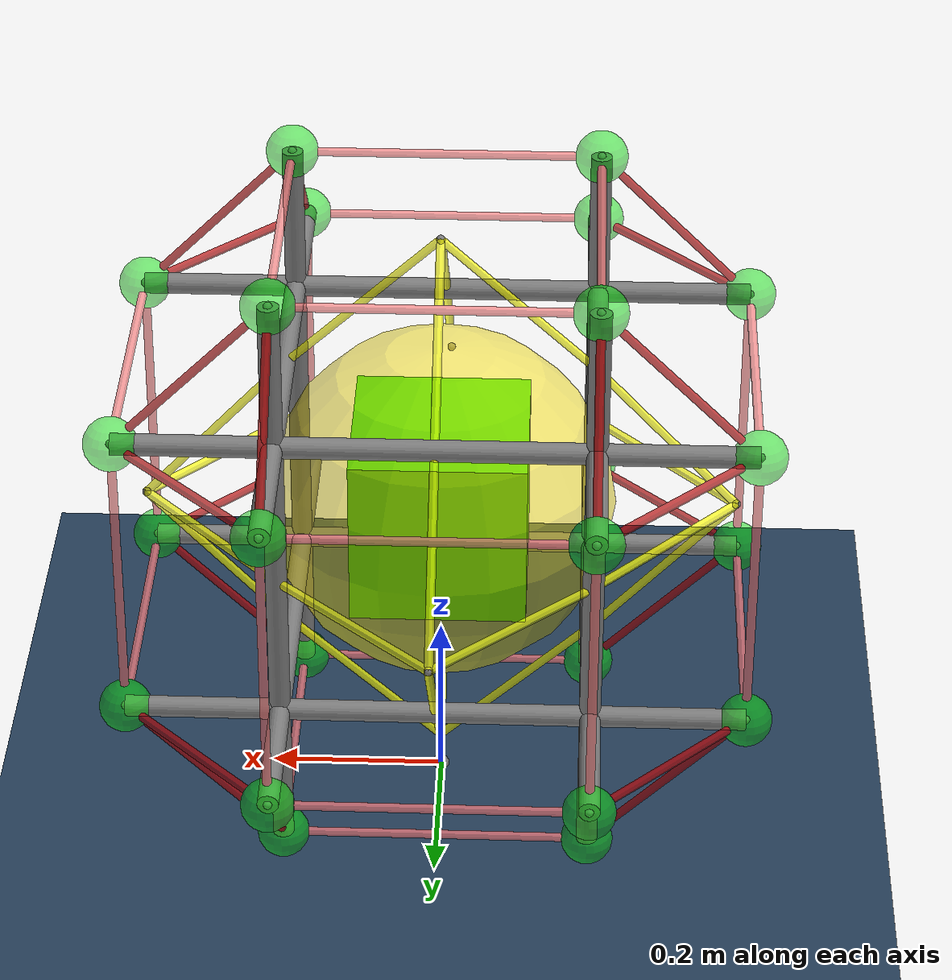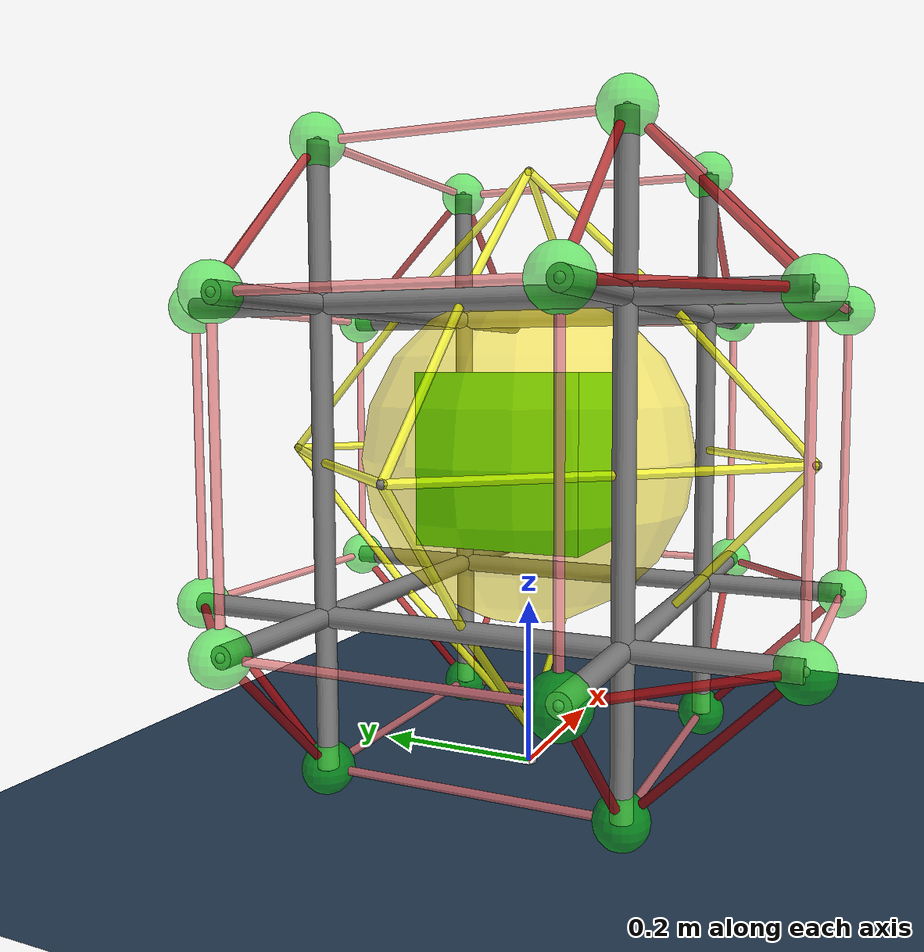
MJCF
<?xml version='1.0' encoding='utf-8'?>
<mujoco model="TT12_environment">
  <compiler autolimits="true" coordinate="local" angle="degree" inertiafromgeom="true" />
  <option timestep="1e-05" gravity="0 0 -10" integrator="Euler">
    <flag override="disable" energy="enable" />
  </option>
  <visual>
    <headlight ambient="0.59999999999999998 0.59999999999999998 0.59999999999999998" diffuse="0.29999999999999999 0.29999999999999999 0.29999999999999999" specular="0.10000000000000001 0.10000000000000001 0.10000000000000001" />
  </visual>
  <default>
    <default class="/">
      <joint type="hinge" damping="0" />
      <geom type="capsule" />
      <site type="sphere" size="0.01" />
      <tendon limited="true" range="0 10" width="0.0050000000000000001" rgba="1 0 0 1" damping="10" />
    </default>
    <default class="tt_model_0/">
      <tendon limited="true" range="0 10" width="0.0050000000000000001" rgba="1 0 0 1" damping="10" />
    </default>
    <default class="tt_model_0/rod0_1/" />
    <default class="tt_model_0/rod2_3/" />
    <default class="tt_model_0/rod4_5/" />
    <default class="tt_model_0/rod6_7/" />
    <default class="tt_model_0/rod8_9/" />
    <default class="tt_model_0/rod10_11/" />
    <default class="tt_model_0/rod12_13/" />
    <default class="tt_model_0/rod14_15/" />
    <default class="tt_model_0/rod16_17/" />
    <default class="tt_model_0/rod18_19/" />
    <default class="tt_model_0/rod20_21/" />
    <default class="tt_model_0/rod22_23/" />
    <default class="tt_model_0/middle_platform/" />
  </default>
  <asset>
    <texture name="skybox" type="skybox" builtin="gradient" rgb1="0.29999999999999999 0.5 0.69999999999999996" rgb2="0 0 0" width="512" height="3072" />
    <texture name="2d" type="2d" builtin="checker" rgb1="0.20000000000000001 0.29999999999999999 0.40000000000000002" rgb2="0.10000000000000001 0.20000000000000001 0.29999999999999999" width="300" height="300" />
    <material name="grid" class="/" texture="2d" texrepeat="5 5" reflectance="0.20000000000000001" />
  </asset>
  <worldbody>
    <geom name="floor" class="/" type="plane" condim="6" priority="1" size="0 0 0.125" material="grid" friction="0.5 0.0050000000000000001 0.0001" solref="-5773.1000000000004 -68.760000000000005" solimp="0.26900000000000002 0.070999999999999994 0.065000000000000002 0.5 2" pos="0 0 0" />
    <light name="light_-2" class="/" pos="-2 -1 3" dir="2 1 -2" />
    <light name="light_2" class="/" pos="2 -1 3" dir="-2 1 -2" />
    <site name="world_site" class="/" pos="0 0 0" />
    <site name="tt_model_0/middle_site_0_1" class="tt_model_0/" rgba="0 0 0 0" pos="0.17499999999999999 0.17499999999999999 0.38" />
    <body pos="0.17499999999999999 0.17499999999999999 0.38" name="tt_model_0/rod0_1/">
      <freejoint name="tt_model_0/rod0_1/" />
      <geom name="tt_model_0/rod0_1/geom0_1" class="tt_model_0/rod0_1/" type="cylinder" size="0.012" mass="0.022499999999999999" fromto="0 0 0.34999999999999998 0 0 -0.34999999999999998" />
      <site name="tt_model_0/rod0_1/node_0" class="tt_model_0/rod0_1/" pos="0 0 0.34999999999999998" />
      <site name="tt_model_0/rod0_1/node_1" class="tt_model_0/rod0_1/" pos="0 0 -0.34999999999999998" />
      <site name="tt_model_0/rod0_1/node_24" class="tt_model_0/rod0_1/" pos="0 0 0" />
      <geom name="tt_model_0/rod0_1/geom_edge_0" class="tt_model_0/rod0_1/" type="sphere" condim="6" size="0.029999999999999999" rgba="0 0.90000000000000002 0 0.5" mass="0.011299999999999999" pos="0 0 0.34999999999999998" />
      <geom name="tt_model_0/rod0_1/geom_edge_1" class="tt_model_0/rod0_1/" type="sphere" condim="6" size="0.029999999999999999" rgba="0 0.90000000000000002 0 0.5" mass="0.011299999999999999" pos="0 0 -0.34999999999999998" />
    </body>
    <site name="tt_model_0/middle_site_2_3" class="tt_model_0/" rgba="0 0 0 0" pos="-0.17499999999999999 0.17499999999999999 0.38" />
    <body pos="-0.17499999999999999 0.17499999999999999 0.38" name="tt_model_0/rod2_3/">
      <freejoint name="tt_model_0/rod2_3/" />
      <geom name="tt_model_0/rod2_3/geom2_3" class="tt_model_0/rod2_3/" type="cylinder" size="0.012" mass="0.022499999999999999" fromto="0 0 0.34999999999999998 0 0 -0.34999999999999998" />
      <site name="tt_model_0/rod2_3/node_2" class="tt_model_0/rod2_3/" pos="0 0 0.34999999999999998" />
      <site name="tt_model_0/rod2_3/node_3" class="tt_model_0/rod2_3/" pos="0 0 -0.34999999999999998" />
      <site name="tt_model_0/rod2_3/node_25" class="tt_model_0/rod2_3/" pos="0 0 0" />
      <geom name="tt_model_0/rod2_3/geom_edge_2" class="tt_model_0/rod2_3/" type="sphere" condim="6" size="0.029999999999999999" rgba="0 0.90000000000000002 0 0.5" mass="0.011299999999999999" pos="0 0 0.34999999999999998" />
      <geom name="tt_model_0/rod2_3/geom_edge_3" class="tt_model_0/rod2_3/" type="sphere" condim="6" size="0.029999999999999999" rgba="0 0.90000000000000002 0 0.5" mass="0.011299999999999999" pos="0 0 -0.34999999999999998" />
    </body>
    <site name="tt_model_0/middle_site_4_5" class="tt_model_0/" rgba="0 0 0 0" pos="-0.17499999999999999 -0.17499999999999999 0.38" />
    <body pos="-0.17499999999999999 -0.17499999999999999 0.38" name="tt_model_0/rod4_5/">
      <freejoint name="tt_model_0/rod4_5/" />
      <geom name="tt_model_0/rod4_5/geom4_5" class="tt_model_0/rod4_5/" type="cylinder" size="0.012" mass="0.022499999999999999" fromto="0 0 0.34999999999999998 0 0 -0.34999999999999998" />
      <site name="tt_model_0/rod4_5/node_4" class="tt_model_0/rod4_5/" pos="0 0 0.34999999999999998" />
      <site name="tt_model_0/rod4_5/node_5" class="tt_model_0/rod4_5/" pos="0 0 -0.34999999999999998" />
      <site name="tt_model_0/rod4_5/node_26" class="tt_model_0/rod4_5/" pos="0 0 0" />
      <geom name="tt_model_0/rod4_5/geom_edge_4" class="tt_model_0/rod4_5/" type="sphere" condim="6" size="0.029999999999999999" rgba="0 0.90000000000000002 0 0.5" mass="0.011299999999999999" pos="0 0 0.34999999999999998" />
      <geom name="tt_model_0/rod4_5/geom_edge_5" class="tt_model_0/rod4_5/" type="sphere" condim="6" size="0.029999999999999999" rgba="0 0.90000000000000002 0 0.5" mass="0.011299999999999999" pos="0 0 -0.34999999999999998" />
    </body>
    <site name="tt_model_0/middle_site_6_7" class="tt_model_0/" rgba="0 0 0 0" pos="0.17499999999999999 -0.17499999999999999 0.38" />
    <body pos="0.17499999999999999 -0.17499999999999999 0.38" name="tt_model_0/rod6_7/">
      <freejoint name="tt_model_0/rod6_7/" />
      <geom name="tt_model_0/rod6_7/geom6_7" class="tt_model_0/rod6_7/" type="cylinder" size="0.012" mass="0.022499999999999999" fromto="0 0 0.34999999999999998 0 0 -0.34999999999999998" />
      <site name="tt_model_0/rod6_7/node_6" class="tt_model_0/rod6_7/" pos="0 0 0.34999999999999998" />
      <site name="tt_model_0/rod6_7/node_7" class="tt_model_0/rod6_7/" pos="0 0 -0.34999999999999998" />
      <site name="tt_model_0/rod6_7/node_27" class="tt_model_0/rod6_7/" pos="0 0 0" />
      <geom name="tt_model_0/rod6_7/geom_edge_6" class="tt_model_0/rod6_7/" type="sphere" condim="6" size="0.029999999999999999" rgba="0 0.90000000000000002 0 0.5" mass="0.011299999999999999" pos="0 0 0.34999999999999998" />
      <geom name="tt_model_0/rod6_7/geom_edge_7" class="tt_model_0/rod6_7/" type="sphere" condim="6" size="0.029999999999999999" rgba="0 0.90000000000000002 0 0.5" mass="0.011299999999999999" pos="0 0 -0.34999999999999998" />
    </body>
    <site name="tt_model_0/middle_site_8_9" class="tt_model_0/" rgba="0 0 0 0" pos="0.17499999999999999 0 0.55499999999999994" />
    <body pos="0.17499999999999999 0 0.55499999999999994" name="tt_model_0/rod8_9/">
      <freejoint name="tt_model_0/rod8_9/" />
      <geom name="tt_model_0/rod8_9/geom8_9" class="tt_model_0/rod8_9/" type="cylinder" size="0.012" mass="0.022499999999999999" fromto="0 0.34999999999999998 0 0 -0.34999999999999998 0" />
      <site name="tt_model_0/rod8_9/node_8" class="tt_model_0/rod8_9/" pos="0 0.34999999999999998 0" />
      <site name="tt_model_0/rod8_9/node_9" class="tt_model_0/rod8_9/" pos="0 -0.34999999999999998 0" />
      <site name="tt_model_0/rod8_9/node_28" class="tt_model_0/rod8_9/" pos="0 0 0" />
      <geom name="tt_model_0/rod8_9/geom_edge_8" class="tt_model_0/rod8_9/" type="sphere" condim="6" size="0.029999999999999999" rgba="0 0.90000000000000002 0 0.5" mass="0.011299999999999999" pos="0 0.34999999999999998 0" />
      <geom name="tt_model_0/rod8_9/geom_edge_9" class="tt_model_0/rod8_9/" type="sphere" condim="6" size="0.029999999999999999" rgba="0 0.90000000000000002 0 0.5" mass="0.011299999999999999" pos="0 -0.34999999999999998 0" />
    </body>
    <site name="tt_model_0/middle_site_10_11" class="tt_model_0/" rgba="0 0 0 0" pos="0.17499999999999999 0 0.20500000000000002" />
    <body pos="0.17499999999999999 0 0.20500000000000002" name="tt_model_0/rod10_11/">
      <freejoint name="tt_model_0/rod10_11/" />
      <geom name="tt_model_0/rod10_11/geom10_11" class="tt_model_0/rod10_11/" type="cylinder" size="0.012" mass="0.022499999999999999" fromto="0 0.34999999999999998 0 0 -0.34999999999999998 0" />
      <site name="tt_model_0/rod10_11/node_10" class="tt_model_0/rod10_11/" pos="0 0.34999999999999998 0" />
      <site name="tt_model_0/rod10_11/node_11" class="tt_model_0/rod10_11/" pos="0 -0.34999999999999998 0" />
      <site name="tt_model_0/rod10_11/node_29" class="tt_model_0/rod10_11/" pos="0 0 0" />
      <geom name="tt_model_0/rod10_11/geom_edge_10" class="tt_model_0/rod10_11/" type="sphere" condim="6" size="0.029999999999999999" rgba="0 0.90000000000000002 0 0.5" mass="0.011299999999999999" pos="0 0.34999999999999998 0" />
      <geom name="tt_model_0/rod10_11/geom_edge_11" class="tt_model_0/rod10_11/" type="sphere" condim="6" size="0.029999999999999999" rgba="0 0.90000000000000002 0 0.5" mass="0.011299999999999999" pos="0 -0.34999999999999998 0" />
    </body>
    <site name="tt_model_0/middle_site_12_13" class="tt_model_0/" rgba="0 0 0 0" pos="-0.17499999999999999 0 0.20500000000000002" />
    <body pos="-0.17499999999999999 0 0.20500000000000002" name="tt_model_0/rod12_13/">
      <freejoint name="tt_model_0/rod12_13/" />
      <geom name="tt_model_0/rod12_13/geom12_13" class="tt_model_0/rod12_13/" type="cylinder" size="0.012" mass="0.022499999999999999" fromto="0 0.34999999999999998 0 0 -0.34999999999999998 0" />
      <site name="tt_model_0/rod12_13/node_12" class="tt_model_0/rod12_13/" pos="0 0.34999999999999998 0" />
      <site name="tt_model_0/rod12_13/node_13" class="tt_model_0/rod12_13/" pos="0 -0.34999999999999998 0" />
      <site name="tt_model_0/rod12_13/node_30" class="tt_model_0/rod12_13/" pos="0 0 0" />
      <geom name="tt_model_0/rod12_13/geom_edge_12" class="tt_model_0/rod12_13/" type="sphere" condim="6" size="0.029999999999999999" rgba="0 0.90000000000000002 0 0.5" mass="0.011299999999999999" pos="0 0.34999999999999998 0" />
      <geom name="tt_model_0/rod12_13/geom_edge_13" class="tt_model_0/rod12_13/" type="sphere" condim="6" size="0.029999999999999999" rgba="0 0.90000000000000002 0 0.5" mass="0.011299999999999999" pos="0 -0.34999999999999998 0" />
    </body>
    <site name="tt_model_0/middle_site_14_15" class="tt_model_0/" rgba="0 0 0 0" pos="-0.17499999999999999 0 0.55499999999999994" />
    <body pos="-0.17499999999999999 0 0.55499999999999994" name="tt_model_0/rod14_15/">
      <freejoint name="tt_model_0/rod14_15/" />
      <geom name="tt_model_0/rod14_15/geom14_15" class="tt_model_0/rod14_15/" type="cylinder" size="0.012" mass="0.022499999999999999" fromto="0 0.34999999999999998 0 0 -0.34999999999999998 0" />
      <site name="tt_model_0/rod14_15/node_14" class="tt_model_0/rod14_15/" pos="0 0.34999999999999998 0" />
      <site name="tt_model_0/rod14_15/node_15" class="tt_model_0/rod14_15/" pos="0 -0.34999999999999998 0" />
      <site name="tt_model_0/rod14_15/node_31" class="tt_model_0/rod14_15/" pos="0 0 0" />
      <geom name="tt_model_0/rod14_15/geom_edge_14" class="tt_model_0/rod14_15/" type="sphere" condim="6" size="0.029999999999999999" rgba="0 0.90000000000000002 0 0.5" mass="0.011299999999999999" pos="0 0.34999999999999998 0" />
      <geom name="tt_model_0/rod14_15/geom_edge_15" class="tt_model_0/rod14_15/" type="sphere" condim="6" size="0.029999999999999999" rgba="0 0.90000000000000002 0 0.5" mass="0.011299999999999999" pos="0 -0.34999999999999998 0" />
    </body>
    <site name="tt_model_0/middle_site_16_17" class="tt_model_0/" rgba="0 0 0 0" pos="0 0.17499999999999999 0.55499999999999994" />
    <body pos="0 0.17499999999999999 0.55499999999999994" name="tt_model_0/rod16_17/">
      <freejoint name="tt_model_0/rod16_17/" />
      <geom name="tt_model_0/rod16_17/geom16_17" class="tt_model_0/rod16_17/" type="cylinder" size="0.012" mass="0.022499999999999999" fromto="0.34999999999999998 0 0 -0.34999999999999998 0 0" />
      <site name="tt_model_0/rod16_17/node_16" class="tt_model_0/rod16_17/" pos="0.34999999999999998 0 0" />
      <site name="tt_model_0/rod16_17/node_17" class="tt_model_0/rod16_17/" pos="-0.34999999999999998 0 0" />
      <site name="tt_model_0/rod16_17/node_32" class="tt_model_0/rod16_17/" pos="0 0 0" />
      <geom name="tt_model_0/rod16_17/geom_edge_16" class="tt_model_0/rod16_17/" type="sphere" condim="6" size="0.029999999999999999" rgba="0 0.90000000000000002 0 0.5" mass="0.011299999999999999" pos="0.34999999999999998 0 0" />
      <geom name="tt_model_0/rod16_17/geom_edge_17" class="tt_model_0/rod16_17/" type="sphere" condim="6" size="0.029999999999999999" rgba="0 0.90000000000000002 0 0.5" mass="0.011299999999999999" pos="-0.34999999999999998 0 0" />
    </body>
    <site name="tt_model_0/middle_site_18_19" class="tt_model_0/" rgba="0 0 0 0" pos="0 -0.17499999999999999 0.55499999999999994" />
    <body pos="0 -0.17499999999999999 0.55499999999999994" name="tt_model_0/rod18_19/">
      <freejoint name="tt_model_0/rod18_19/" />
      <geom name="tt_model_0/rod18_19/geom18_19" class="tt_model_0/rod18_19/" type="cylinder" size="0.012" mass="0.022499999999999999" fromto="0.34999999999999998 0 0 -0.34999999999999998 0 0" />
      <site name="tt_model_0/rod18_19/node_18" class="tt_model_0/rod18_19/" pos="0.34999999999999998 0 0" />
      <site name="tt_model_0/rod18_19/node_19" class="tt_model_0/rod18_19/" pos="-0.34999999999999998 0 0" />
      <site name="tt_model_0/rod18_19/node_33" class="tt_model_0/rod18_19/" pos="0 0 0" />
      <geom name="tt_model_0/rod18_19/geom_edge_18" class="tt_model_0/rod18_19/" type="sphere" condim="6" size="0.029999999999999999" rgba="0 0.90000000000000002 0 0.5" mass="0.011299999999999999" pos="0.34999999999999998 0 0" />
      <geom name="tt_model_0/rod18_19/geom_edge_19" class="tt_model_0/rod18_19/" type="sphere" condim="6" size="0.029999999999999999" rgba="0 0.90000000000000002 0 0.5" mass="0.011299999999999999" pos="-0.34999999999999998 0 0" />
    </body>
    <site name="tt_model_0/middle_site_20_21" class="tt_model_0/" rgba="0 0 0 0" pos="0 -0.17499999999999999 0.20500000000000002" />
    <body pos="0 -0.17499999999999999 0.20500000000000002" name="tt_model_0/rod20_21/">
      <freejoint name="tt_model_0/rod20_21/" />
      <geom name="tt_model_0/rod20_21/geom20_21" class="tt_model_0/rod20_21/" type="cylinder" size="0.012" mass="0.022499999999999999" fromto="0.34999999999999998 0 0 -0.34999999999999998 0 0" />
      <site name="tt_model_0/rod20_21/node_20" class="tt_model_0/rod20_21/" pos="0.34999999999999998 0 0" />
      <site name="tt_model_0/rod20_21/node_21" class="tt_model_0/rod20_21/" pos="-0.34999999999999998 0 0" />
      <site name="tt_model_0/rod20_21/node_34" class="tt_model_0/rod20_21/" pos="0 0 0" />
      <geom name="tt_model_0/rod20_21/geom_edge_20" class="tt_model_0/rod20_21/" type="sphere" condim="6" size="0.029999999999999999" rgba="0 0.90000000000000002 0 0.5" mass="0.011299999999999999" pos="0.34999999999999998 0 0" />
      <geom name="tt_model_0/rod20_21/geom_edge_21" class="tt_model_0/rod20_21/" type="sphere" condim="6" size="0.029999999999999999" rgba="0 0.90000000000000002 0 0.5" mass="0.011299999999999999" pos="-0.34999999999999998 0 0" />
    </body>
    <site name="tt_model_0/middle_site_22_23" class="tt_model_0/" rgba="0 0 0 0" pos="0 0.17499999999999999 0.20500000000000002" />
    <body pos="0 0.17499999999999999 0.20500000000000002" name="tt_model_0/rod22_23/">
      <freejoint name="tt_model_0/rod22_23/" />
      <geom name="tt_model_0/rod22_23/geom22_23" class="tt_model_0/rod22_23/" type="cylinder" size="0.012" mass="0.022499999999999999" fromto="0.34999999999999998 0 0 -0.34999999999999998 0 0" />
      <site name="tt_model_0/rod22_23/node_22" class="tt_model_0/rod22_23/" pos="0.34999999999999998 0 0" />
      <site name="tt_model_0/rod22_23/node_23" class="tt_model_0/rod22_23/" pos="-0.34999999999999998 0 0" />
      <site name="tt_model_0/rod22_23/node_35" class="tt_model_0/rod22_23/" pos="0 0 0" />
      <geom name="tt_model_0/rod22_23/geom_edge_22" class="tt_model_0/rod22_23/" type="sphere" condim="6" size="0.029999999999999999" rgba="0 0.90000000000000002 0 0.5" mass="0.011299999999999999" pos="0.34999999999999998 0 0" />
      <geom name="tt_model_0/rod22_23/geom_edge_23" class="tt_model_0/rod22_23/" type="sphere" condim="6" size="0.029999999999999999" rgba="0 0.90000000000000002 0 0.5" mass="0.011299999999999999" pos="-0.34999999999999998 0 0" />
    </body>
    <site name="tt_model_0/middle_element_site" class="tt_model_0/" rgba="0 0 0 0" pos="0 0 0.38" />
    <body pos="0 0 0.38" name="tt_model_0/middle_platform/">
      <freejoint name="tt_model_0/middle_platform/" />
      <inertial pos="0 0 0" mass="0.69999999999999996" diaginertia="0.02 0.02 0.02" />
      <site name="tt_model_0/middle_platform/node_41" class="tt_model_0/middle_platform/" pos="0 0 0.33700000000000008" />
      <site name="tt_model_0/middle_platform/node_38" class="tt_model_0/middle_platform/" pos="-0.33700000000000002 0 0" />
      <site name="tt_model_0/middle_platform/node_40" class="tt_model_0/middle_platform/" pos="0 -0.33700000000000002 0" />
      <site name="tt_model_0/middle_platform/node_39" class="tt_model_0/middle_platform/" pos="0 0.33700000000000002 0" />
      <site name="tt_model_0/middle_platform/node_37" class="tt_model_0/middle_platform/" pos="0.33700000000000002 0 0" />
      <site name="tt_model_0/middle_platform/node_42" class="tt_model_0/middle_platform/" pos="0 0 -0.33700000000000002" />
      <site name="tt_model_0/middle_platform/outside_site" class="tt_model_0/middle_platform/" rgba="1 0.90000000000000002 0 0.5" size="0.20000000000000001" pos="0 0 0" />
      <body name="tt_model_0/middle_platform/inside_ball" pos="0 0 0">
        <inertial pos="0 0 0" mass="6.5999999999999996" diaginertia="0.12 0.12 0.12" />
        <joint name="tt_model_0/middle_platform/x_control" class="tt_model_0/middle_platform/" type="hinge" axis="1 0 0" />
        <joint name="tt_model_0/middle_platform/y_control" class="tt_model_0/middle_platform/" type="hinge" axis="0 1 0" />
        <joint name="tt_model_0/middle_platform/z_control" class="tt_model_0/middle_platform/" type="hinge" axis="0 0 1" />
        <site name="tt_model_0/middle_platform/inside_site" class="tt_model_0/middle_platform/" type="box" rgba="0 0.90000000000000002 0 1" size="0.10000000000000001 0.10000000000000001 0.10000000000000001" pos="0 0 0" />
      </body>
    </body>
  </worldbody>
  <contact>
    <exclude name="tt_model_0/exclude_rod0_1_rod2_3" body1="tt_model_0/rod0_1/" body2="tt_model_0/rod2_3/" />
    <exclude name="tt_model_0/exclude_rod0_1_rod4_5" body1="tt_model_0/rod0_1/" body2="tt_model_0/rod4_5/" />
    <exclude name="tt_model_0/exclude_rod0_1_rod6_7" body1="tt_model_0/rod0_1/" body2="tt_model_0/rod6_7/" />
    <exclude name="tt_model_0/exclude_rod0_1_rod8_9" body1="tt_model_0/rod0_1/" body2="tt_model_0/rod8_9/" />
    <exclude name="tt_model_0/exclude_rod0_1_rod10_11" body1="tt_model_0/rod0_1/" body2="tt_model_0/rod10_11/" />
    <exclude name="tt_model_0/exclude_rod0_1_rod12_13" body1="tt_model_0/rod0_1/" body2="tt_model_0/rod12_13/" />
    <exclude name="tt_model_0/exclude_rod0_1_rod14_15" body1="tt_model_0/rod0_1/" body2="tt_model_0/rod14_15/" />
    <exclude name="tt_model_0/exclude_rod0_1_rod16_17" body1="tt_model_0/rod0_1/" body2="tt_model_0/rod16_17/" />
    <exclude name="tt_model_0/exclude_rod0_1_rod18_19" body1="tt_model_0/rod0_1/" body2="tt_model_0/rod18_19/" />
    <exclude name="tt_model_0/exclude_rod0_1_rod20_21" body1="tt_model_0/rod0_1/" body2="tt_model_0/rod20_21/" />
    <exclude name="tt_model_0/exclude_rod0_1_rod22_23" body1="tt_model_0/rod0_1/" body2="tt_model_0/rod22_23/" />
    <exclude name="tt_model_0/exclude_rod2_3_rod4_5" body1="tt_model_0/rod2_3/" body2="tt_model_0/rod4_5/" />
    <exclude name="tt_model_0/exclude_rod2_3_rod6_7" body1="tt_model_0/rod2_3/" body2="tt_model_0/rod6_7/" />
    <exclude name="tt_model_0/exclude_rod2_3_rod8_9" body1="tt_model_0/rod2_3/" body2="tt_model_0/rod8_9/" />
    <exclude name="tt_model_0/exclude_rod2_3_rod10_11" body1="tt_model_0/rod2_3/" body2="tt_model_0/rod10_11/" />
    <exclude name="tt_model_0/exclude_rod2_3_rod12_13" body1="tt_model_0/rod2_3/" body2="tt_model_0/rod12_13/" />
    <exclude name="tt_model_0/exclude_rod2_3_rod14_15" body1="tt_model_0/rod2_3/" body2="tt_model_0/rod14_15/" />
    <exclude name="tt_model_0/exclude_rod2_3_rod16_17" body1="tt_model_0/rod2_3/" body2="tt_model_0/rod16_17/" />
    <exclude name="tt_model_0/exclude_rod2_3_rod18_19" body1="tt_model_0/rod2_3/" body2="tt_model_0/rod18_19/" />
    <exclude name="tt_model_0/exclude_rod2_3_rod20_21" body1="tt_model_0/rod2_3/" body2="tt_model_0/rod20_21/" />
    <exclude name="tt_model_0/exclude_rod2_3_rod22_23" body1="tt_model_0/rod2_3/" body2="tt_model_0/rod22_23/" />
    <exclude name="tt_model_0/exclude_rod4_5_rod6_7" body1="tt_model_0/rod4_5/" body2="tt_model_0/rod6_7/" />
    <exclude name="tt_model_0/exclude_rod4_5_rod8_9" body1="tt_model_0/rod4_5/" body2="tt_model_0/rod8_9/" />
    <exclude name="tt_model_0/exclude_rod4_5_rod10_11" body1="tt_model_0/rod4_5/" body2="tt_model_0/rod10_11/" />
    <exclude name="tt_model_0/exclude_rod4_5_rod12_13" body1="tt_model_0/rod4_5/" body2="tt_model_0/rod12_13/" />
    <exclude name="tt_model_0/exclude_rod4_5_rod14_15" body1="tt_model_0/rod4_5/" body2="tt_model_0/rod14_15/" />
    <exclude name="tt_model_0/exclude_rod4_5_rod16_17" body1="tt_model_0/rod4_5/" body2="tt_model_0/rod16_17/" />
    <exclude name="tt_model_0/exclude_rod4_5_rod18_19" body1="tt_model_0/rod4_5/" body2="tt_model_0/rod18_19/" />
    <exclude name="tt_model_0/exclude_rod4_5_rod20_21" body1="tt_model_0/rod4_5/" body2="tt_model_0/rod20_21/" />
    <exclude name="tt_model_0/exclude_rod4_5_rod22_23" body1="tt_model_0/rod4_5/" body2="tt_model_0/rod22_23/" />
    <exclude name="tt_model_0/exclude_rod6_7_rod8_9" body1="tt_model_0/rod6_7/" body2="tt_model_0/rod8_9/" />
    <exclude name="tt_model_0/exclude_rod6_7_rod10_11" body1="tt_model_0/rod6_7/" body2="tt_model_0/rod10_11/" />
    <exclude name="tt_model_0/exclude_rod6_7_rod12_13" body1="tt_model_0/rod6_7/" body2="tt_model_0/rod12_13/" />
    <exclude name="tt_model_0/exclude_rod6_7_rod14_15" body1="tt_model_0/rod6_7/" body2="tt_model_0/rod14_15/" />
    <exclude name="tt_model_0/exclude_rod6_7_rod16_17" body1="tt_model_0/rod6_7/" body2="tt_model_0/rod16_17/" />
    <exclude name="tt_model_0/exclude_rod6_7_rod18_19" body1="tt_model_0/rod6_7/" body2="tt_model_0/rod18_19/" />
    <exclude name="tt_model_0/exclude_rod6_7_rod20_21" body1="tt_model_0/rod6_7/" body2="tt_model_0/rod20_21/" />
    <exclude name="tt_model_0/exclude_rod6_7_rod22_23" body1="tt_model_0/rod6_7/" body2="tt_model_0/rod22_23/" />
    <exclude name="tt_model_0/exclude_rod8_9_rod10_11" body1="tt_model_0/rod8_9/" body2="tt_model_0/rod10_11/" />
    <exclude name="tt_model_0/exclude_rod8_9_rod12_13" body1="tt_model_0/rod8_9/" body2="tt_model_0/rod12_13/" />
    <exclude name="tt_model_0/exclude_rod8_9_rod14_15" body1="tt_model_0/rod8_9/" body2="tt_model_0/rod14_15/" />
    <exclude name="tt_model_0/exclude_rod8_9_rod16_17" body1="tt_model_0/rod8_9/" body2="tt_model_0/rod16_17/" />
    <exclude name="tt_model_0/exclude_rod8_9_rod18_19" body1="tt_model_0/rod8_9/" body2="tt_model_0/rod18_19/" />
    <exclude name="tt_model_0/exclude_rod8_9_rod20_21" body1="tt_model_0/rod8_9/" body2="tt_model_0/rod20_21/" />
    <exclude name="tt_model_0/exclude_rod8_9_rod22_23" body1="tt_model_0/rod8_9/" body2="tt_model_0/rod22_23/" />
    <exclude name="tt_model_0/exclude_rod10_11_rod12_13" body1="tt_model_0/rod10_11/" body2="tt_model_0/rod12_13/" />
    <exclude name="tt_model_0/exclude_rod10_11_rod14_15" body1="tt_model_0/rod10_11/" body2="tt_model_0/rod14_15/" />
    <exclude name="tt_model_0/exclude_rod10_11_rod16_17" body1="tt_model_0/rod10_11/" body2="tt_model_0/rod16_17/" />
    <exclude name="tt_model_0/exclude_rod10_11_rod18_19" body1="tt_model_0/rod10_11/" body2="tt_model_0/rod18_19/" />
    <exclude name="tt_model_0/exclude_rod10_11_rod20_21" body1="tt_model_0/rod10_11/" body2="tt_model_0/rod20_21/" />
    <exclude name="tt_model_0/exclude_rod10_11_rod22_23" body1="tt_model_0/rod10_11/" body2="tt_model_0/rod22_23/" />
    <exclude name="tt_model_0/exclude_rod12_13_rod14_15" body1="tt_model_0/rod12_13/" body2="tt_model_0/rod14_15/" />
    <exclude name="tt_model_0/exclude_rod12_13_rod16_17" body1="tt_model_0/rod12_13/" body2="tt_model_0/rod16_17/" />
    <exclude name="tt_model_0/exclude_rod12_13_rod18_19" body1="tt_model_0/rod12_13/" body2="tt_model_0/rod18_19/" />
    <exclude name="tt_model_0/exclude_rod12_13_rod20_21" body1="tt_model_0/rod12_13/" body2="tt_model_0/rod20_21/" />
    <exclude name="tt_model_0/exclude_rod12_13_rod22_23" body1="tt_model_0/rod12_13/" body2="tt_model_0/rod22_23/" />
    <exclude name="tt_model_0/exclude_rod14_15_rod16_17" body1="tt_model_0/rod14_15/" body2="tt_model_0/rod16_17/" />
    <exclude name="tt_model_0/exclude_rod14_15_rod18_19" body1="tt_model_0/rod14_15/" body2="tt_model_0/rod18_19/" />
    <exclude name="tt_model_0/exclude_rod14_15_rod20_21" body1="tt_model_0/rod14_15/" body2="tt_model_0/rod20_21/" />
    <exclude name="tt_model_0/exclude_rod14_15_rod22_23" body1="tt_model_0/rod14_15/" body2="tt_model_0/rod22_23/" />
    <exclude name="tt_model_0/exclude_rod16_17_rod18_19" body1="tt_model_0/rod16_17/" body2="tt_model_0/rod18_19/" />
    <exclude name="tt_model_0/exclude_rod16_17_rod20_21" body1="tt_model_0/rod16_17/" body2="tt_model_0/rod20_21/" />
    <exclude name="tt_model_0/exclude_rod16_17_rod22_23" body1="tt_model_0/rod16_17/" body2="tt_model_0/rod22_23/" />
    <exclude name="tt_model_0/exclude_rod18_19_rod20_21" body1="tt_model_0/rod18_19/" body2="tt_model_0/rod20_21/" />
    <exclude name="tt_model_0/exclude_rod18_19_rod22_23" body1="tt_model_0/rod18_19/" body2="tt_model_0/rod22_23/" />
    <exclude name="tt_model_0/exclude_rod20_21_rod22_23" body1="tt_model_0/rod20_21/" body2="tt_model_0/rod22_23/" />
  </contact>
  <tendon>
    <spatial name="tt_model_0/td0_2" class="tt_model_0/" rgba="1 0.5 0.5 0.69999999999999996" springlength="0.22029831387808038" stiffness="771">
      <site site="tt_model_0/rod0_1/node_0" />
      <site site="tt_model_0/rod2_3/node_2" />
    </spatial>
    <spatial name="tt_model_0/td2_4" class="tt_model_0/" rgba="1 0.5 0.5 0.69999999999999996" springlength="0.22029831387808038" stiffness="771">
      <site site="tt_model_0/rod2_3/node_2" />
      <site site="tt_model_0/rod4_5/node_4" />
    </spatial>
    <spatial name="tt_model_0/td4_6" class="tt_model_0/" rgba="1 0.5 0.5 0.69999999999999996" springlength="0.22029831387808038" stiffness="771">
      <site site="tt_model_0/rod4_5/node_4" />
      <site site="tt_model_0/rod6_7/node_6" />
    </spatial>
    <spatial name="tt_model_0/td6_0" class="tt_model_0/" rgba="1 0.5 0.5 0.69999999999999996" springlength="0.22029831387808038" stiffness="771">
      <site site="tt_model_0/rod6_7/node_6" />
      <site site="tt_model_0/rod0_1/node_0" />
    </spatial>
    <spatial name="tt_model_0/td1_3" class="tt_model_0/" rgba="1 0.5 0.5 0.69999999999999996" springlength="0.22029831387808038" stiffness="771">
      <site site="tt_model_0/rod0_1/node_1" />
      <site site="tt_model_0/rod2_3/node_3" />
    </spatial>
    <spatial name="tt_model_0/td3_5" class="tt_model_0/" rgba="1 0.5 0.5 0.69999999999999996" springlength="0.22029831387808038" stiffness="771">
      <site site="tt_model_0/rod2_3/node_3" />
      <site site="tt_model_0/rod4_5/node_5" />
    </spatial>
    <spatial name="tt_model_0/td5_7" class="tt_model_0/" rgba="1 0.5 0.5 0.69999999999999996" springlength="0.22029831387808038" stiffness="771">
      <site site="tt_model_0/rod4_5/node_5" />
      <site site="tt_model_0/rod6_7/node_7" />
    </spatial>
    <spatial name="tt_model_0/td7_1" class="tt_model_0/" rgba="1 0.5 0.5 0.69999999999999996" springlength="0.22029831387808038" stiffness="771">
      <site site="tt_model_0/rod6_7/node_7" />
      <site site="tt_model_0/rod0_1/node_1" />
    </spatial>
    <spatial name="tt_model_0/td8_10" class="tt_model_0/" rgba="1 0.5 0.5 0.69999999999999996" springlength="0.22029831387808038" stiffness="771">
      <site site="tt_model_0/rod8_9/node_8" />
      <site site="tt_model_0/rod10_11/node_10" />
    </spatial>
    <spatial name="tt_model_0/td10_12" class="tt_model_0/" rgba="1 0.5 0.5 0.69999999999999996" springlength="0.22029831387808038" stiffness="771">
      <site site="tt_model_0/rod10_11/node_10" />
      <site site="tt_model_0/rod12_13/node_12" />
    </spatial>
    <spatial name="tt_model_0/td12_14" class="tt_model_0/" rgba="1 0.5 0.5 0.69999999999999996" springlength="0.22029831387808038" stiffness="771">
      <site site="tt_model_0/rod12_13/node_12" />
      <site site="tt_model_0/rod14_15/node_14" />
    </spatial>
    <spatial name="tt_model_0/td14_8" class="tt_model_0/" rgba="1 0.5 0.5 0.69999999999999996" springlength="0.22029831387808038" stiffness="771">
      <site site="tt_model_0/rod14_15/node_14" />
      <site site="tt_model_0/rod8_9/node_8" />
    </spatial>
    <spatial name="tt_model_0/td9_11" class="tt_model_0/" rgba="1 0.5 0.5 0.69999999999999996" springlength="0.22029831387808038" stiffness="771">
      <site site="tt_model_0/rod8_9/node_9" />
      <site site="tt_model_0/rod10_11/node_11" />
    </spatial>
    <spatial name="tt_model_0/td11_13" class="tt_model_0/" rgba="1 0.5 0.5 0.69999999999999996" springlength="0.22029831387808038" stiffness="771">
      <site site="tt_model_0/rod10_11/node_11" />
      <site site="tt_model_0/rod12_13/node_13" />
    </spatial>
    <spatial name="tt_model_0/td13_15" class="tt_model_0/" rgba="1 0.5 0.5 0.69999999999999996" springlength="0.22029831387808038" stiffness="771">
      <site site="tt_model_0/rod12_13/node_13" />
      <site site="tt_model_0/rod14_15/node_15" />
    </spatial>
    <spatial name="tt_model_0/td15_9" class="tt_model_0/" rgba="1 0.5 0.5 0.69999999999999996" springlength="0.22029831387808038" stiffness="771">
      <site site="tt_model_0/rod14_15/node_15" />
      <site site="tt_model_0/rod8_9/node_9" />
    </spatial>
    <spatial name="tt_model_0/td16_18" class="tt_model_0/" rgba="1 0.5 0.5 0.69999999999999996" springlength="0.22029831387808038" stiffness="771">
      <site site="tt_model_0/rod16_17/node_16" />
      <site site="tt_model_0/rod18_19/node_18" />
    </spatial>
    <spatial name="tt_model_0/td18_20" class="tt_model_0/" rgba="1 0.5 0.5 0.69999999999999996" springlength="0.22029831387808038" stiffness="771">
      <site site="tt_model_0/rod18_19/node_18" />
      <site site="tt_model_0/rod20_21/node_20" />
    </spatial>
    <spatial name="tt_model_0/td20_22" class="tt_model_0/" rgba="1 0.5 0.5 0.69999999999999996" springlength="0.22029831387808038" stiffness="771">
      <site site="tt_model_0/rod20_21/node_20" />
      <site site="tt_model_0/rod22_23/node_22" />
    </spatial>
    <spatial name="tt_model_0/td22_16" class="tt_model_0/" rgba="1 0.5 0.5 0.69999999999999996" springlength="0.22029831387808038" stiffness="771">
      <site site="tt_model_0/rod22_23/node_22" />
      <site site="tt_model_0/rod16_17/node_16" />
    </spatial>
    <spatial name="tt_model_0/td17_19" class="tt_model_0/" rgba="1 0.5 0.5 0.69999999999999996" springlength="0.22029831387808038" stiffness="771">
      <site site="tt_model_0/rod16_17/node_17" />
      <site site="tt_model_0/rod18_19/node_19" />
    </spatial>
    <spatial name="tt_model_0/td19_21" class="tt_model_0/" rgba="1 0.5 0.5 0.69999999999999996" springlength="0.22029831387808038" stiffness="771">
      <site site="tt_model_0/rod18_19/node_19" />
      <site site="tt_model_0/rod20_21/node_21" />
    </spatial>
    <spatial name="tt_model_0/td21_23" class="tt_model_0/" rgba="1 0.5 0.5 0.69999999999999996" springlength="0.22029831387808038" stiffness="771">
      <site site="tt_model_0/rod20_21/node_21" />
      <site site="tt_model_0/rod22_23/node_23" />
    </spatial>
    <spatial name="tt_model_0/td23_17" class="tt_model_0/" rgba="1 0.5 0.5 0.69999999999999996" springlength="0.22029831387808038" stiffness="771">
      <site site="tt_model_0/rod22_23/node_23" />
      <site site="tt_model_0/rod16_17/node_17" />
    </spatial>
    <spatial name="tt_model_0/td0_16" class="tt_model_0/" rgba="0.69999999999999996 0 0 0.69999999999999996" springlength="0.10248737341529165" stiffness="2000">
      <site site="tt_model_0/rod0_1/node_0" />
      <site site="tt_model_0/rod16_17/node_16" />
    </spatial>
    <spatial name="tt_model_0/td2_17" class="tt_model_0/" rgba="0.69999999999999996 0 0 0.69999999999999996" springlength="0.10248737341529165" stiffness="2000">
      <site site="tt_model_0/rod2_3/node_2" />
      <site site="tt_model_0/rod16_17/node_17" />
    </spatial>
    <spatial name="tt_model_0/td4_19" class="tt_model_0/" rgba="0.69999999999999996 0 0 0.69999999999999996" springlength="0.10248737341529165" stiffness="2000">
      <site site="tt_model_0/rod4_5/node_4" />
      <site site="tt_model_0/rod18_19/node_19" />
    </spatial>
    <spatial name="tt_model_0/td6_18" class="tt_model_0/" rgba="0.69999999999999996 0 0 0.69999999999999996" springlength="0.10248737341529165" stiffness="2000">
      <site site="tt_model_0/rod6_7/node_6" />
      <site site="tt_model_0/rod18_19/node_18" />
    </spatial>
    <spatial name="tt_model_0/td1_22" class="tt_model_0/" rgba="0.69999999999999996 0 0 0.69999999999999996" springlength="0.10248737341529165" stiffness="2000">
      <site site="tt_model_0/rod0_1/node_1" />
      <site site="tt_model_0/rod22_23/node_22" />
    </spatial>
    <spatial name="tt_model_0/td3_23" class="tt_model_0/" rgba="0.69999999999999996 0 0 0.69999999999999996" springlength="0.10248737341529165" stiffness="2000">
      <site site="tt_model_0/rod2_3/node_3" />
      <site site="tt_model_0/rod22_23/node_23" />
    </spatial>
    <spatial name="tt_model_0/td5_21" class="tt_model_0/" rgba="0.69999999999999996 0 0 0.69999999999999996" springlength="0.10248737341529165" stiffness="2000">
      <site site="tt_model_0/rod4_5/node_5" />
      <site site="tt_model_0/rod20_21/node_21" />
    </spatial>
    <spatial name="tt_model_0/td7_20" class="tt_model_0/" rgba="0.69999999999999996 0 0 0.69999999999999996" springlength="0.10248737341529165" stiffness="2000">
      <site site="tt_model_0/rod6_7/node_7" />
      <site site="tt_model_0/rod20_21/node_20" />
    </spatial>
    <spatial name="tt_model_0/td8_0" class="tt_model_0/" rgba="0.69999999999999996 0 0 0.69999999999999996" springlength="0.10248737341529165" stiffness="2000">
      <site site="tt_model_0/rod8_9/node_8" />
      <site site="tt_model_0/rod0_1/node_0" />
    </spatial>
    <spatial name="tt_model_0/td8_16" class="tt_model_0/" rgba="0.69999999999999996 0 0 0.69999999999999996" springlength="0.10248737341529165" stiffness="2000">
      <site site="tt_model_0/rod8_9/node_8" />
      <site site="tt_model_0/rod16_17/node_16" />
    </spatial>
    <spatial name="tt_model_0/td9_6" class="tt_model_0/" rgba="0.69999999999999996 0 0 0.69999999999999996" springlength="0.10248737341529165" stiffness="2000">
      <site site="tt_model_0/rod8_9/node_9" />
      <site site="tt_model_0/rod6_7/node_6" />
    </spatial>
    <spatial name="tt_model_0/td9_18" class="tt_model_0/" rgba="0.69999999999999996 0 0 0.69999999999999996" springlength="0.10248737341529165" stiffness="2000">
      <site site="tt_model_0/rod8_9/node_9" />
      <site site="tt_model_0/rod18_19/node_18" />
    </spatial>
    <spatial name="tt_model_0/td10_1" class="tt_model_0/" rgba="0.69999999999999996 0 0 0.69999999999999996" springlength="0.10248737341529165" stiffness="2000">
      <site site="tt_model_0/rod10_11/node_10" />
      <site site="tt_model_0/rod0_1/node_1" />
    </spatial>
    <spatial name="tt_model_0/td10_22" class="tt_model_0/" rgba="0.69999999999999996 0 0 0.69999999999999996" springlength="0.10248737341529165" stiffness="2000">
      <site site="tt_model_0/rod10_11/node_10" />
      <site site="tt_model_0/rod22_23/node_22" />
    </spatial>
    <spatial name="tt_model_0/td11_7" class="tt_model_0/" rgba="0.69999999999999996 0 0 0.69999999999999996" springlength="0.10248737341529165" stiffness="2000">
      <site site="tt_model_0/rod10_11/node_11" />
      <site site="tt_model_0/rod6_7/node_7" />
    </spatial>
    <spatial name="tt_model_0/td11_20" class="tt_model_0/" rgba="0.69999999999999996 0 0 0.69999999999999996" springlength="0.10248737341529165" stiffness="2000">
      <site site="tt_model_0/rod10_11/node_11" />
      <site site="tt_model_0/rod20_21/node_20" />
    </spatial>
    <spatial name="tt_model_0/td12_3" class="tt_model_0/" rgba="0.69999999999999996 0 0 0.69999999999999996" springlength="0.10248737341529165" stiffness="2000">
      <site site="tt_model_0/rod12_13/node_12" />
      <site site="tt_model_0/rod2_3/node_3" />
    </spatial>
    <spatial name="tt_model_0/td12_23" class="tt_model_0/" rgba="0.69999999999999996 0 0 0.69999999999999996" springlength="0.10248737341529165" stiffness="2000">
      <site site="tt_model_0/rod12_13/node_12" />
      <site site="tt_model_0/rod22_23/node_23" />
    </spatial>
    <spatial name="tt_model_0/td13_5" class="tt_model_0/" rgba="0.69999999999999996 0 0 0.69999999999999996" springlength="0.10248737341529165" stiffness="2000">
      <site site="tt_model_0/rod12_13/node_13" />
      <site site="tt_model_0/rod4_5/node_5" />
    </spatial>
    <spatial name="tt_model_0/td13_21" class="tt_model_0/" rgba="0.69999999999999996 0 0 0.69999999999999996" springlength="0.10248737341529165" stiffness="2000">
      <site site="tt_model_0/rod12_13/node_13" />
      <site site="tt_model_0/rod20_21/node_21" />
    </spatial>
    <spatial name="tt_model_0/td14_2" class="tt_model_0/" rgba="0.69999999999999996 0 0 0.69999999999999996" springlength="0.10248737341529165" stiffness="2000">
      <site site="tt_model_0/rod14_15/node_14" />
      <site site="tt_model_0/rod2_3/node_2" />
    </spatial>
    <spatial name="tt_model_0/td14_17" class="tt_model_0/" rgba="0.69999999999999996 0 0 0.69999999999999996" springlength="0.10248737341529165" stiffness="2000">
      <site site="tt_model_0/rod14_15/node_14" />
      <site site="tt_model_0/rod16_17/node_17" />
    </spatial>
    <spatial name="tt_model_0/td15_4" class="tt_model_0/" rgba="0.69999999999999996 0 0 0.69999999999999996" springlength="0.10248737341529165" stiffness="2000">
      <site site="tt_model_0/rod14_15/node_15" />
      <site site="tt_model_0/rod4_5/node_4" />
    </spatial>
    <spatial name="tt_model_0/td15_19" class="tt_model_0/" rgba="0.69999999999999996 0 0 0.69999999999999996" springlength="0.10248737341529165" stiffness="2000">
      <site site="tt_model_0/rod14_15/node_15" />
      <site site="tt_model_0/rod18_19/node_19" />
    </spatial>
    <spatial name="tt_model_0/td24_37" class="tt_model_0/" rgba="1 1 0 0.69999999999999996" springlength="0.18094266379472976" stiffness="67000">
      <site site="tt_model_0/rod0_1/node_24" />
      <site site="tt_model_0/middle_platform/node_37" />
    </spatial>
    <spatial name="tt_model_0/td28_37" class="tt_model_0/" rgba="1 1 0 0.69999999999999996" springlength="0.18094266379472976" stiffness="67000">
      <site site="tt_model_0/rod8_9/node_28" />
      <site site="tt_model_0/middle_platform/node_37" />
    </spatial>
    <spatial name="tt_model_0/td27_37" class="tt_model_0/" rgba="1 1 0 0.69999999999999996" springlength="0.18094266379472976" stiffness="67000">
      <site site="tt_model_0/rod6_7/node_27" />
      <site site="tt_model_0/middle_platform/node_37" />
    </spatial>
    <spatial name="tt_model_0/td29_37" class="tt_model_0/" rgba="1 1 0 0.69999999999999996" springlength="0.18094266379472976" stiffness="67000">
      <site site="tt_model_0/rod10_11/node_29" />
      <site site="tt_model_0/middle_platform/node_37" />
    </spatial>
    <spatial name="tt_model_0/td25_38" class="tt_model_0/" rgba="1 1 0 0.69999999999999996" springlength="0.18094266379472976" stiffness="67000">
      <site site="tt_model_0/rod2_3/node_25" />
      <site site="tt_model_0/middle_platform/node_38" />
    </spatial>
    <spatial name="tt_model_0/td31_38" class="tt_model_0/" rgba="1 1 0 0.69999999999999996" springlength="0.18094266379472976" stiffness="67000">
      <site site="tt_model_0/rod14_15/node_31" />
      <site site="tt_model_0/middle_platform/node_38" />
    </spatial>
    <spatial name="tt_model_0/td26_38" class="tt_model_0/" rgba="1 1 0 0.69999999999999996" springlength="0.18094266379472976" stiffness="67000">
      <site site="tt_model_0/rod4_5/node_26" />
      <site site="tt_model_0/middle_platform/node_38" />
    </spatial>
    <spatial name="tt_model_0/td30_38" class="tt_model_0/" rgba="1 1 0 0.69999999999999996" springlength="0.18094266379472976" stiffness="67000">
      <site site="tt_model_0/rod12_13/node_30" />
      <site site="tt_model_0/middle_platform/node_38" />
    </spatial>
    <spatial name="tt_model_0/td35_39" class="tt_model_0/" rgba="1 1 0 0.69999999999999996" springlength="0.18094266379472976" stiffness="67000">
      <site site="tt_model_0/rod22_23/node_35" />
      <site site="tt_model_0/middle_platform/node_39" />
    </spatial>
    <spatial name="tt_model_0/td25_39" class="tt_model_0/" rgba="1 1 0 0.69999999999999996" springlength="0.18094266379472976" stiffness="67000">
      <site site="tt_model_0/rod2_3/node_25" />
      <site site="tt_model_0/middle_platform/node_39" />
    </spatial>
    <spatial name="tt_model_0/td32_39" class="tt_model_0/" rgba="1 1 0 0.69999999999999996" springlength="0.18094266379472976" stiffness="67000">
      <site site="tt_model_0/rod16_17/node_32" />
      <site site="tt_model_0/middle_platform/node_39" />
    </spatial>
    <spatial name="tt_model_0/td24_39" class="tt_model_0/" rgba="1 1 0 0.69999999999999996" springlength="0.18094266379472976" stiffness="67000">
      <site site="tt_model_0/rod0_1/node_24" />
      <site site="tt_model_0/middle_platform/node_39" />
    </spatial>
    <spatial name="tt_model_0/td34_40" class="tt_model_0/" rgba="1 1 0 0.69999999999999996" springlength="0.18094266379472976" stiffness="67000">
      <site site="tt_model_0/rod20_21/node_34" />
      <site site="tt_model_0/middle_platform/node_40" />
    </spatial>
    <spatial name="tt_model_0/td26_40" class="tt_model_0/" rgba="1 1 0 0.69999999999999996" springlength="0.18094266379472976" stiffness="67000">
      <site site="tt_model_0/rod4_5/node_26" />
      <site site="tt_model_0/middle_platform/node_40" />
    </spatial>
    <spatial name="tt_model_0/td33_40" class="tt_model_0/" rgba="1 1 0 0.69999999999999996" springlength="0.18094266379472976" stiffness="67000">
      <site site="tt_model_0/rod18_19/node_33" />
      <site site="tt_model_0/middle_platform/node_40" />
    </spatial>
    <spatial name="tt_model_0/td27_40" class="tt_model_0/" rgba="1 1 0 0.69999999999999996" springlength="0.18094266379472976" stiffness="67000">
      <site site="tt_model_0/rod6_7/node_27" />
      <site site="tt_model_0/middle_platform/node_40" />
    </spatial>
    <spatial name="tt_model_0/td32_41" class="tt_model_0/" rgba="1 1 0 0.69999999999999996" springlength="0.18094266379472976" stiffness="67000">
      <site site="tt_model_0/rod16_17/node_32" />
      <site site="tt_model_0/middle_platform/node_41" />
    </spatial>
    <spatial name="tt_model_0/td31_41" class="tt_model_0/" rgba="1 1 0 0.69999999999999996" springlength="0.18094266379472976" stiffness="67000">
      <site site="tt_model_0/rod14_15/node_31" />
      <site site="tt_model_0/middle_platform/node_41" />
    </spatial>
    <spatial name="tt_model_0/td33_41" class="tt_model_0/" rgba="1 1 0 0.69999999999999996" springlength="0.18094266379472976" stiffness="67000">
      <site site="tt_model_0/rod18_19/node_33" />
      <site site="tt_model_0/middle_platform/node_41" />
    </spatial>
    <spatial name="tt_model_0/td28_41" class="tt_model_0/" rgba="1 1 0 0.69999999999999996" springlength="0.18094266379472976" stiffness="67000">
      <site site="tt_model_0/rod8_9/node_28" />
      <site site="tt_model_0/middle_platform/node_41" />
    </spatial>
    <spatial name="tt_model_0/td35_42" class="tt_model_0/" rgba="1 1 0 0.69999999999999996" springlength="0.18094266379472976" stiffness="67000">
      <site site="tt_model_0/rod22_23/node_35" />
      <site site="tt_model_0/middle_platform/node_42" />
    </spatial>
    <spatial name="tt_model_0/td30_42" class="tt_model_0/" rgba="1 1 0 0.69999999999999996" springlength="0.18094266379472976" stiffness="67000">
      <site site="tt_model_0/rod12_13/node_30" />
      <site site="tt_model_0/middle_platform/node_42" />
    </spatial>
    <spatial name="tt_model_0/td29_42" class="tt_model_0/" rgba="1 1 0 0.69999999999999996" springlength="0.18094266379472976" stiffness="67000">
      <site site="tt_model_0/rod10_11/node_29" />
      <site site="tt_model_0/middle_platform/node_42" />
    </spatial>
    <spatial name="tt_model_0/td34_42" class="tt_model_0/" rgba="1 1 0 0.69999999999999996" springlength="0.18094266379472976" stiffness="67000">
      <site site="tt_model_0/rod20_21/node_34" />
      <site site="tt_model_0/middle_platform/node_42" />
    </spatial>
  </tendon>
  <actuator>
    <motor name="tt_model_0/torque_x_ctrl" class="tt_model_0/" ctrllimited="true" ctrlrange="-200 200" gear="1" joint="tt_model_0/middle_platform/x_control" />
    <velocity name="tt_model_0/velocity_x_ctrl" class="tt_model_0/" ctrlrange="-200 200" joint="tt_model_0/middle_platform/x_control" kv="0" />
  </actuator>
  <sensor>
    <framepos name="tt_model_0/pos_outside_ball" objtype="body" objname="tt_model_0/middle_platform/" reftype="site" refname="world_site" />
    <framepos name="tt_model_0/pos_inside_ball" objtype="body" objname="tt_model_0/middle_platform/inside_ball" reftype="site" refname="world_site" />
    <frameangvel name="tt_model_0/angvel_outside_ball" objtype="body" objname="tt_model_0/middle_platform/" reftype="site" refname="world_site" />
    <frameangvel name="tt_model_0/angvel_inside_ball" objtype="body" objname="tt_model_0/middle_platform/inside_ball" reftype="site" refname="world_site" />
    <frameangacc name="tt_model_0/angacc_outside_ball" objtype="body" objname="tt_model_0/middle_platform/" />
    <frameangacc name="tt_model_0/angacc_inside_ball" objtype="body" objname="tt_model_0/middle_platform/inside_ball" />
    <accelerometer name="tt_model_0//unnamed_sensor_6" site="tt_model_0/middle_platform/inside_site" />
  </sensor>
  <keyframe>
    <key name="tt_model_0/initial_state" time="0" qpos="0.17499995721692274 0.17499995721692324 0.3797603081753964 0.9999999902666233 -9.86578761870223e-05 9.865787618700916e-05 -2.4598158367837777e-17 -0.17499995721692346 0.174999957216923 0.3797603081753964 0.9999999902666233 -9.865787618705202e-05 -9.865787618695765e-05 -1.6225654906582485e-17 -0.1749999572169232 -0.1749999572169232 0.3797603081753964 0.9999999902666233 9.865787618696984e-05 -9.865787618702509e-05 -5.597993221398609e-17 0.17499995721692302 -0.174999957216923 0.3797603081753964 0.9999999902666233 9.865787618703458e-05 9.865787618697466e-05 -4.588708571906124e-18 0.17501247123129796 1.2905558028012717e-16 0.5542786349291615 1.0 5.7206072678435516e-18 1.3360589059320022e-21 4.1480280380806785e-16 0.1749875445306727 1.326231411977564e-16 0.2042786060896687 1.0 2.4545804710123345e-18 4.238877366722506e-20 4.536654652548178e-16 -0.17498754453067317 -1.2813303869164657e-16 0.2042786060896687 1.0 -5.150696813659788e-17 -2.070604717102185e-20 4.500527858323875e-16 -0.17501247123129834 -1.2045911039512078e-16 0.5542786349291615 1.0 -2.841244500561877e-17 -2.962501171321827e-20 3.9777435367441057e-16 -3.4578504830276975e-16 0.17501247123129812 0.5542786349291615 1.0 2.0999289888350293e-18 -1.2829341466726422e-19 4.1219847806147274e-16 -8.6809046636972e-17 -0.1750124712312981 0.5542786349291615 1.0 6.2923477230891644e-18 1.029617397888452e-17 4.090142981181668e-16 -1.0341785318244802e-16 -0.1749875445306729 0.20427860608966872 1.0 5.826874512759357e-18 -1.1916115868573092e-17 4.606149980954202e-16 -3.6753651235145536e-16 0.1749875445306729 0.20427860608966877 1.0 6.022183031814847e-18 1.485958553108185e-17 4.2491830738232643e-16 -2.4216493209233677e-16 9.62879386780446e-18 0.3792587652306908 1.0 -1.691612114643801e-17 1.2886786204755186e-17 3.751724651301341e-16 3.53385947048859e-17 -2.6515613400251478e-17 -7.502729011435518e-16" qvel="0 0 0 0 0 0 0 0 0 0 0 0 0 0 0 0 0 0 0 0 0 0 0 0 0 0 0 0 0 0 0 0 0 0 0 0 0 0 0 0 0 0 0 0 0 0 0 0 0 0 0 0 0 0 0 0 0 0 0 0 0 0 0 0 0 0 0 0 0 0 0 0 0 0 0 0 0 0 70 0 0" ctrl="-90 0" />
    <key name="tt_model_0/initial_state1" time="0" qpos="0.17932999999999999 0.22314100000000001 0.27458199999999999 0.92047199999999996 -0.38627699999999998 0.023045 0.054674199999999999 -0.17932999999999999 0.22314100000000001 0.27458199999999999 0.92047199999999996 -0.38627699999999998 -0.023045 -0.054674199999999999 -0.17941199999999999 -0.030902800000000001 0.52774100000000002 0.90754199999999996 -0.377382 -0.070750199999999999 -0.170131 0.17941199999999999 -0.030902800000000001 0.52774100000000002 0.90754199999999996 -0.377382 0.070750199999999999 0.170131 0.17941199999999999 0.22303200000000001 0.52774100000000002 0.92440599999999995 -0.381409 1.87586e-05 -3.10178e-06 0.17932999999999999 -0.031012100000000001 0.27458199999999999 0.92557 -0.37836599999999998 0.0117246 -0.00469259 -0.17932999999999999 -0.031012100000000001 0.27458199999999999 0.92557 -0.37836599999999998 -0.0117246 0.00469259 -0.17941199999999999 0.22303200000000001 0.52774100000000002 0.92440599999999995 -0.381409 -1.8764099999999999e-05 3.1040400000000001e-06 9.5790899999999993e-13 0.34996300000000002 0.40096199999999999 1 4.0099599999999997e-14 1.0991499999999999e-15 -7.3526199999999994e-12 -2.7757899999999998e-12 0.096064700000000003 0.65462500000000001 1 5.8886000000000003e-14 1.0504599999999999e-15 -7.3530599999999998e-12 -6.5096099999999998e-12 -0.157834 0.40096199999999999 1 -3.7627500000000002e-14 6.2732100000000002e-16 -7.3527099999999997e-12 -2.77591e-12 0.096064700000000003 0.147512 1 5.1108799999999998e-14 4.4750600000000003e-17 -7.35383e-12 -2.7758599999999998e-12 0.096064700000000003 0.40098400000000001 0.92388000000000003 -0.382683 2.81394e-12 -6.7931299999999998e-12 -349.07400000000001 2.3731399999999999e-11 -5.8805700000000003e-12" qvel="0 0 0 0 0 0 0 0 0 0 0 0 0 0 0 0 0 0 0 0 0 0 0 0 0 0 0 0 0 0 0 0 0 0 0 0 0 0 0 0 0 0 0 0 0 0 0 0 0 0 0 0 0 0 0 0 0 0 0 0 0 0 0 0 0 0 0 0 0 0 0 0 0 0 0 0 0 0 70 0 0" ctrl="-100 0" />
  </keyframe>
</mujoco>
